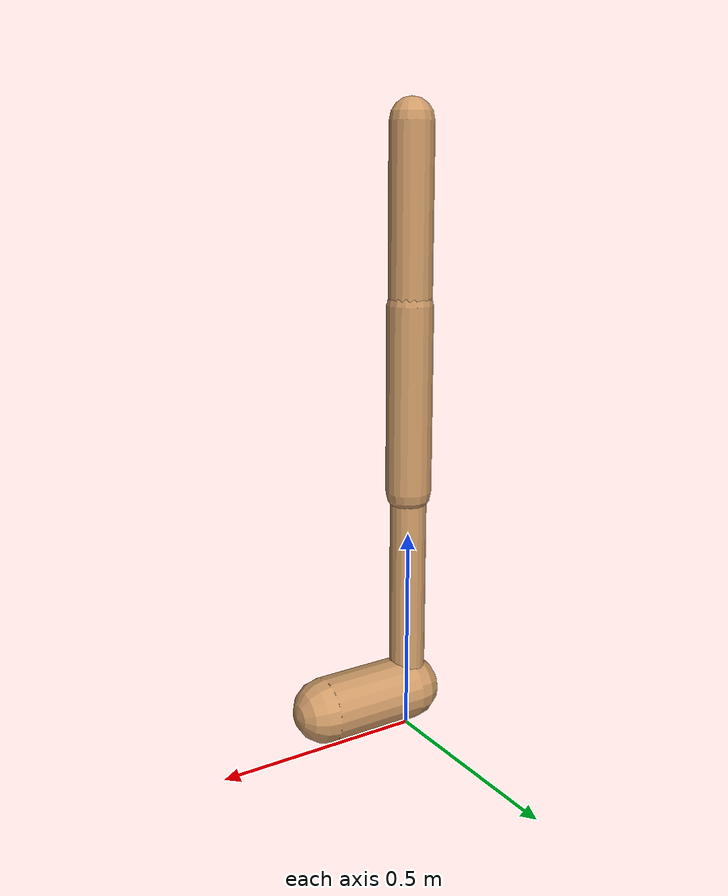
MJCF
<mujoco model="walker2d">
  <compiler angle="degree" coordinate="global" inertiafromgeom="true" />
  <default>
    <joint armature="0.01" damping=".1" limited="true" />
    <geom conaffinity="0" condim="3" contype="1" density="1000" friction="0.8 .1 .1" rgba="0.8 0.6 .4 1" />
  </default>
  <option integrator="RK4" timestep="0.002" />
  <worldbody>

    <body name="torso" pos="0 0 -0.01881539138659908">
      <joint armature="0" axis="1 0 0" damping="0" limited="false" name="ignorex" pos="0 0 0" stiffness="0" type="slide" />
      <joint armature="0" axis="0 0 1" damping="0" limited="false" name="ignorez" pos="0 0 0" ref="1.25" stiffness="0" type="slide" />
      <joint armature="0" axis="0 1 0" damping="0" limited="false" name="ignorey" pos="0 0 0" stiffness="0" type="hinge" />
      <geom fromto="0 0 1.45 0 0 1.05" name="torso_geom" size="0.05062812116875477" type="capsule" />
      <body name="thigh">
        <joint axis="0 -1 0" name="thigh_joint" pos="0 0 1.05" range="-150 0" type="hinge" />
        <geom fromto="0.0 0.0 1.05 0.0 0.0 0.6089125538147048" name="thigh_geom" size="0.0538346608831906" type="capsule" />
        <body name="leg" pos="0.0 0.0 0.008912553814704793">
          <joint axis="0 -1 0" name="leg_joint" pos="0 0 0.6" range="-150 0" type="hinge" />
          <geom fromto="0.0 0.0 0.6 0.0 0.0 0.10990283757189426" name="leg_geom" size="0.04306772870655248" type="capsule" />
          <body name="foot" pos="0.0 0.0 0.009902837571894252">
            <joint axis="0 -1 0" name="foot_joint" pos="0 0 0.1" range="-45 45" type="hinge" />
            <geom fromto="-0.0 0.0 0.09999999999999999 0.23209763973939337 0.0 0.09999999999999999" name="foot_geom" size="0.0783553753357217" type="capsule" />
          </body>
        </body>
      </body>

      <body name="thigh_left">
        <joint axis="0 -1 0" name="thigh_left_joint" pos="0 0 1.05" range="-150 0" type="hinge" />
        <geom fromto="0.0 0.0 1.05 0.0 0.0 0.6089125538147048" name="thigh_left_geom" rgba=".7 .3 .6 1" size="0.0538346608831906" type="capsule" />
        <body name="leg_left" pos="0.0 0.0 0.008912553814704793">
          <joint axis="0 -1 0" name="leg_left_joint" pos="0 0 0.6" range="-150 0" type="hinge" />
          <geom fromto="0.0 0.0 0.6 0.0 0.0 0.10990283757189426" name="leg_left_geom" rgba=".7 .3 .6 1" size="0.04306772870655248" type="capsule" />
          <body name="foot_left" pos="0.0 0.0 0.009902837571894252">
            <joint axis="0 -1 0" name="foot_left_joint" pos="0 0 0.1" range="-45 45" type="hinge" />
            <geom fromto="-0.0 0.0 0.09999999999999999 0.23209763973939337 0.0 0.09999999999999999" name="foot_left_geom" rgba=".7 .3 .6 1" size="0.0783553753357217" type="capsule" />
          </body>
        </body>
      </body>
    </body>
  </worldbody>
  <actuator>

    <motor ctrllimited="true" ctrlrange="-1.0 1.0" gear="100" joint="thigh_joint" />
    <motor ctrllimited="true" ctrlrange="-1.0 1.0" gear="100" joint="leg_joint" />
    <motor ctrllimited="true" ctrlrange="-1.0 1.0" gear="100" joint="foot_joint" />
    <motor ctrllimited="true" ctrlrange="-1.0 1.0" gear="100" joint="thigh_left_joint" />
    <motor ctrllimited="true" ctrlrange="-1.0 1.0" gear="100" joint="leg_left_joint" />
    <motor ctrllimited="true" ctrlrange="-1.0 1.0" gear="100" joint="foot_left_joint" />

  </actuator>
</mujoco>
